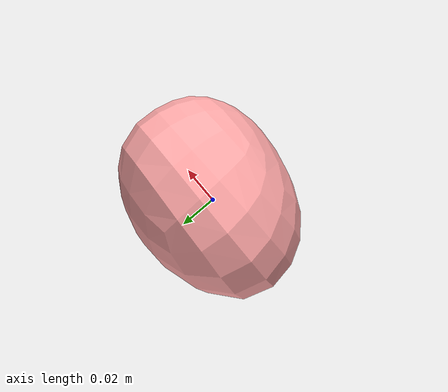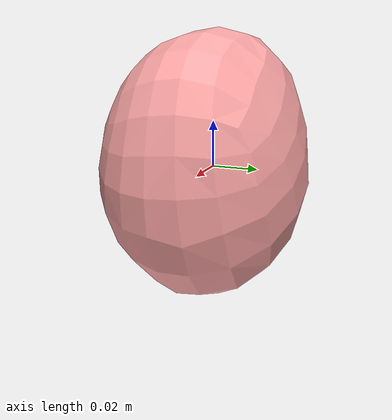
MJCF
<mujoco model="Potato_27">
  <default>
    <default class="visual">
      <geom group="2" type="mesh" contype="0" conaffinity="0"/>
    </default>
    <default class="collision">
      <geom group="3" type="mesh"/>
    </default>
  </default>
  <asset>
    <material name="Potato3_Mat2" specular="0.5" shininess="0.5" rgba="1 0.6544118 0.6544118 1.0"/>
    <mesh file="Potato_27.obj"/>
    <mesh file="Potato_27_collision_0.obj"/>
  </asset>
  <worldbody>
    <body name="Potato_27">
      <geom material="Potato3_Mat2" mesh="Potato_27" class="visual"/>
      <geom mesh="Potato_27_collision_0" rgba="0.6261508732781381 0.2209988127105309 0.8288063792298068 1" class="collision"/>
    </body>
  </worldbody>
</mujoco>
